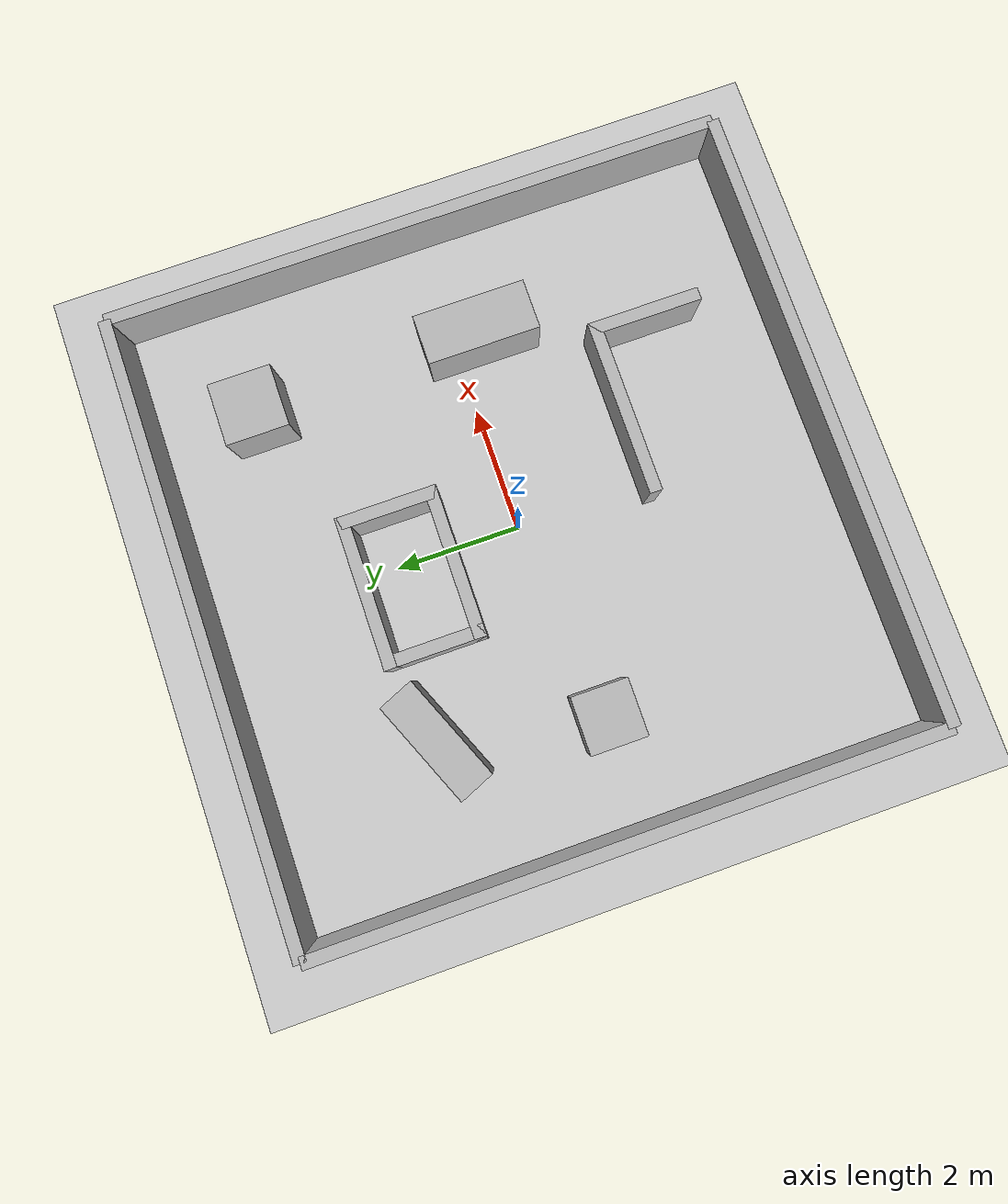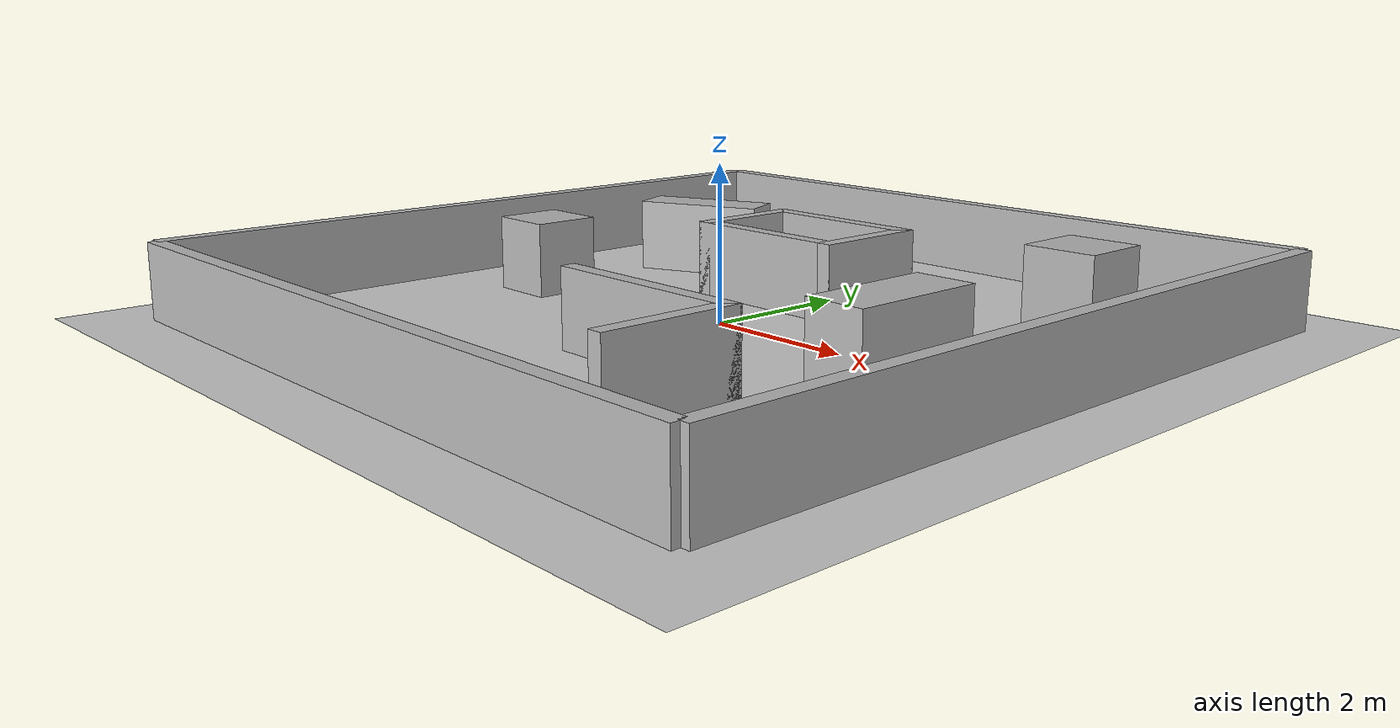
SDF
<?xml version="1.0" ?>

<sdf version="1.8">

  <world name="localization_world">

    <!-- Physics                                                   -->

    <physics name="1ms" type="ignored">

      <max_step_size>0.001</max_step_size>

      <real_time_factor>1.0</real_time_factor>

    </physics>

    <!-- Physics System                                            -->

    <plugin
      filename="ignition-gazebo-physics-system"
      name="ignition::gazebo::systems::Physics">
    </plugin>

    <!-- User Commands                                             -->

    <plugin
      filename="ignition-gazebo-user-commands-system"
      name="ignition::gazebo::systems::UserCommands">
    </plugin>

    <!-- Scene Broadcaster                                         -->

    <plugin
      filename="ignition-gazebo-scene-broadcaster-system"
      name="ignition::gazebo::systems::SceneBroadcaster">
    </plugin>

    <!-- Sensor System                                             -->
    <!-- Used by GPU LiDAR                                         -->

    <plugin
      filename="libignition-gazebo-sensors-system.so"
      name="ignition::gazebo::systems::Sensors">

      <render_engine>ogre2</render_engine>

    </plugin>

    <!-- IMU System                                                -->

    <plugin
      filename="libignition-gazebo-imu-system.so"
      name="ignition::gazebo::systems::Imu">
    </plugin>

    <!-- Ground Plane                                              -->

    <model name="ground_plane">

      <static>true</static>

      <link name="link">

        <collision name="collision">

          <geometry>

            <plane>

              <normal>0 0 1</normal>

              <size>100 100</size>

            </plane>

          </geometry>

        </collision>

        <visual name="visual">

          <geometry>

            <plane>

              <normal>0 0 1</normal>

              <size>100 100</size>

            </plane>

          </geometry>

          <material>

            <ambient>0.8 0.8 0.8 1</ambient>

            <diffuse>0.8 0.8 0.8 1</diffuse>

          </material>

        </visual>

      </link>

    </model>

    <!-- Outer Wall - North                                        -->

    <model name="wall_north">

      <static>true</static>

      <pose>0 5 0.5 0 0 0</pose>

      <link name="link">

        <collision name="collision">

          <geometry>

            <box>

              <size>10 0.2 1.0</size>

            </box>

          </geometry>

        </collision>

        <visual name="visual">

          <geometry>

            <box>

              <size>10 0.2 1.0</size>

            </box>

          </geometry>

        </visual>

      </link>

    </model>

    <!-- Outer Wall - South                                        -->

    <model name="wall_south">

      <static>true</static>

      <pose>0 -5 0.5 0 0 0</pose>

      <link name="link">

        <collision name="collision">

          <geometry>

            <box>

              <size>10 0.2 1.0</size>

            </box>

          </geometry>

        </collision>

        <visual name="visual">

          <geometry>

            <box>

              <size>10 0.2 1.0</size>

            </box>

          </geometry>

        </visual>

      </link>

    </model>

    <!-- Outer Wall - West                                         -->

    <model name="wall_west">

      <static>true</static>

      <pose>-5 0 0.5 0 0 0</pose>

      <link name="link">

        <collision name="collision">

          <geometry>

            <box>

              <size>0.2 10 1.0</size>

            </box>

          </geometry>

        </collision>

        <visual name="visual">

          <geometry>

            <box>

              <size>0.2 10 1.0</size>

            </box>

          </geometry>

        </visual>

      </link>

    </model>

    <!-- Outer Wall - East                                         -->

    <model name="wall_east">

      <static>true</static>

      <pose>5 0 0.5 0 0 0</pose>

      <link name="link">

        <collision name="collision">

          <geometry>

            <box>

              <size>0.2 10 1.0</size>

            </box>

          </geometry>

        </collision>

        <visual name="visual">

          <geometry>

            <box>

              <size>0.2 10 1.0</size>

            </box>

          </geometry>

        </visual>

      </link>

    </model>

    <!-- Box A                                                     -->
    <!-- Upper-right landmark                                      -->

    <model name="box_a">

      <static>true</static>

      <pose>3.0 3.3 0.5 0 0 0</pose>

      <link name="link">

        <collision name="collision">

          <geometry>

            <box>

              <size>1.0 1.0 1.0</size>

            </box>

          </geometry>

        </collision>

        <visual name="visual">

          <geometry>

            <box>

              <size>1.0 1.0 1.0</size>

            </box>

          </geometry>

        </visual>

      </link>

    </model>

    <!-- Rotated Obstacle                                          -->
    <!-- Non-axis-aligned feature for LiDAR / ICP                   -->
    <!-- yaw = 0.4 rad                                             -->

    <model name="rotated_obstacle">

      <static>true</static>

      <pose>-2.7 2.2 0.5 0 0 0.4</pose>

      <link name="link">

        <collision name="collision">

          <geometry>

            <box>

              <size>1.8 0.6 1.0</size>

            </box>

          </geometry>

        </collision>

        <visual name="visual">

          <geometry>

            <box>

              <size>1.8 0.6 1.0</size>

            </box>

          </geometry>

        </visual>

      </link>

    </model>

    <!-- Central Rectangular Structure                             -->
    <!-- North Wall                                                -->

    <model name="center_room_north">

      <static>true</static>

      <pose>-0.3 2.5 0.5 0 0 0</pose>

      <link name="link">

        <collision name="collision">

          <geometry>

            <box>

              <size>2.4 0.2 1.0</size>

            </box>

          </geometry>

        </collision>

        <visual name="visual">

          <geometry>

            <box>

              <size>2.4 0.2 1.0</size>

            </box>

          </geometry>

        </visual>

      </link>

    </model>

    <!-- Central Rectangular Structure                             -->
    <!-- South Wall                                                -->

    <model name="center_room_south">

      <static>true</static>

      <pose>-0.3 1.1 0.5 0 0 0</pose>

      <link name="link">

        <collision name="collision">

          <geometry>

            <box>

              <size>2.4 0.2 1.0</size>

            </box>

          </geometry>

        </collision>

        <visual name="visual">

          <geometry>

            <box>

              <size>2.4 0.2 1.0</size>

            </box>

          </geometry>

        </visual>

      </link>

    </model>

    <!-- Central Rectangular Structure                             -->
    <!-- West Wall                                                 -->

    <model name="center_room_west">

      <static>true</static>

      <pose>-1.4 1.8 0.5 0 0 0</pose>

      <link name="link">

        <collision name="collision">

          <geometry>

            <box>

              <size>0.2 1.6 1.0</size>

            </box>

          </geometry>

        </collision>

        <visual name="visual">

          <geometry>

            <box>

              <size>0.2 1.6 1.0</size>

            </box>

          </geometry>

        </visual>

      </link>

    </model>

    <!-- Central Rectangular Structure                             -->
    <!-- East Wall                                                 -->

    <model name="center_room_east">

      <static>true</static>

      <pose>0.8 1.8 0.5 0 0 0</pose>

      <link name="link">

        <collision name="collision">

          <geometry>

            <box>

              <size>0.2 1.6 1.0</size>

            </box>

          </geometry>

        </collision>

        <visual name="visual">

          <geometry>

            <box>

              <size>0.2 1.6 1.0</size>

            </box>

          </geometry>

        </visual>

      </link>

    </model>

    <!-- Box B                                                     -->
    <!-- Left-side landmark                                        -->

    <model name="box_b">

      <static>true</static>

      <pose>-3.2 -0.3 0.5 0 0 0</pose>

      <link name="link">

        <collision name="collision">

          <geometry>

            <box>

              <size>0.9 0.9 1.0</size>

            </box>

          </geometry>

        </collision>

        <visual name="visual">

          <geometry>

            <box>

              <size>0.9 0.9 1.0</size>

            </box>

          </geometry>

        </visual>

      </link>

    </model>

    <!-- Box C                                                     -->
    <!-- Right-side vertical landmark                              -->

    <model name="box_c">

      <static>true</static>

      <pose>3.1 -0.4 0.5 0 0 0</pose>

      <link name="link">

        <collision name="collision">

          <geometry>

            <box>

              <size>0.8 1.8 1.0</size>

            </box>

          </geometry>

        </collision>

        <visual name="visual">

          <geometry>

            <box>

              <size>0.8 1.8 1.0</size>

            </box>

          </geometry>

        </visual>

      </link>

    </model>

    <!-- L-shaped Feature                                          -->
    <!-- Horizontal Wall                                           -->

    <model name="inner_wall_horizontal">

      <static>true</static>

      <pose>1.1 -2.1 0.5 0 0 0</pose>

      <link name="link">

        <collision name="collision">

          <geometry>

            <box>

              <size>2.8 0.2 1.0</size>

            </box>

          </geometry>

        </collision>

        <visual name="visual">

          <geometry>

            <box>

              <size>2.8 0.2 1.0</size>

            </box>

          </geometry>

        </visual>

      </link>

    </model>

    <!-- L-shaped Feature                                          -->
    <!-- Vertical Wall                                             -->

    <model name="inner_wall_vertical">

      <static>true</static>

      <pose>2.4 -2.9 0.5 0 0 0</pose>

      <link name="link">

        <collision name="collision">

          <geometry>

            <box>

              <size>0.2 1.8 1.0</size>

            </box>

          </geometry>

        </collision>

        <visual name="visual">

          <geometry>

            <box>

              <size>0.2 1.8 1.0</size>

            </box>

          </geometry>

        </visual>

      </link>

    </model>

    <!-- Directional Light                                         -->

    <light type="directional" name="sun">

      <cast_shadows>true</cast_shadows>

      <pose>0 0 10 0 0 0</pose>

      <diffuse>

        0.8 0.8 0.8 1

      </diffuse>

      <specular>

        0.2 0.2 0.2 1

      </specular>

      <direction>

        -0.5 0.1 -0.9

      </direction>

    </light>

  </world>

</sdf>
